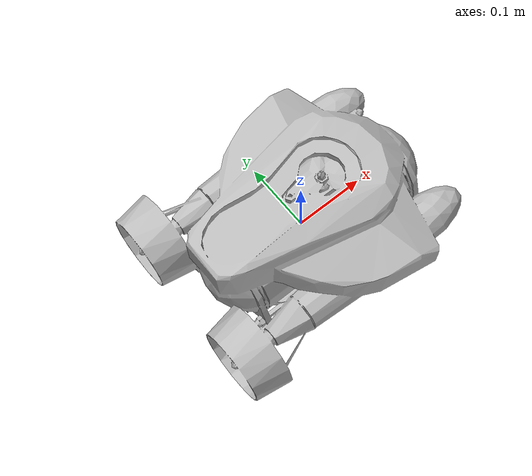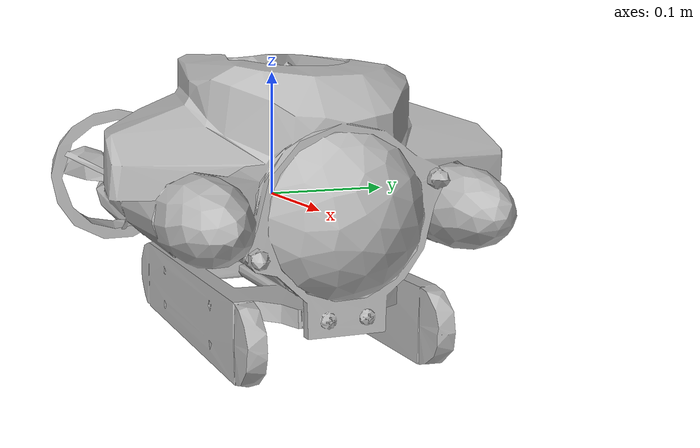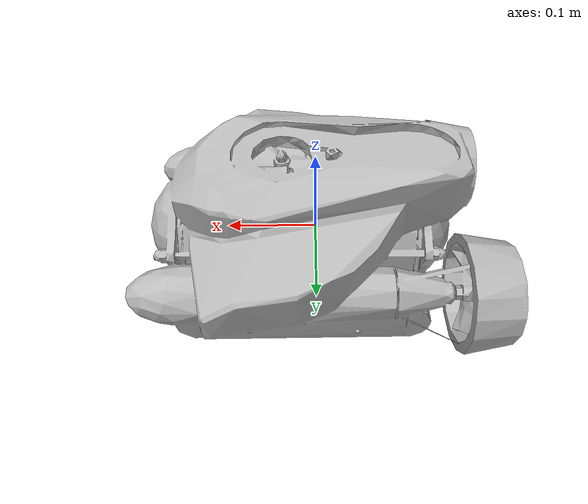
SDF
<?xml version='1.0'?>

<sdf version='1.4'>
  <model name='videoray'>
    <link name='body'>
      <pose>0 0 0 0 -0 0</pose>
      <inertial>
        <pose>0 0 0 0 -0 0</pose>
        <mass>1.001</mass>
        <inertia>
          <ixx>100</ixx>
          <ixy>0</ixy>
          <ixz>0</ixz>
          <iyy>100</iyy>
          <iyz>0</iyz>
          <izz>100</izz>
        </inertia>
      </inertial>
      <visual name='body_visual'>
        <pose>0 0 0 0 -0 0</pose>
        <geometry>
          <mesh>
            <scale>1 1 1</scale>
            <uri>file:///home/nathaniel/simulation/src/ros-videoray-sim/move_videoray/graphics/videoray_robot.stl</uri>
          </mesh>
        </geometry>
      </visual>
      <velocity_decay>
        <linear>0</linear>
        <angular>0</angular>
      </velocity_decay>
    </link>
  </model>
</sdf>
